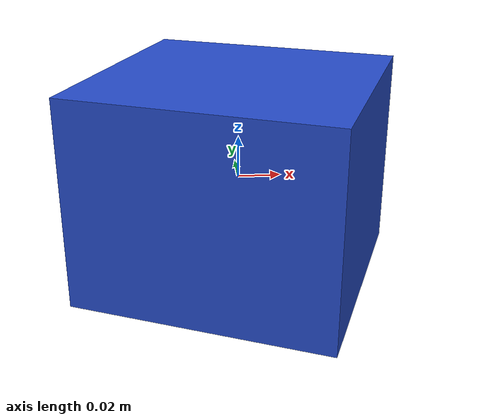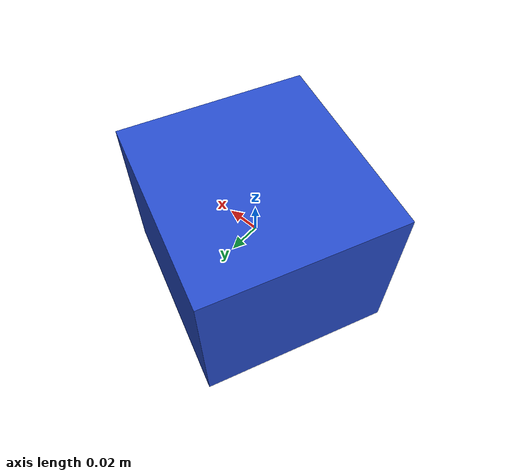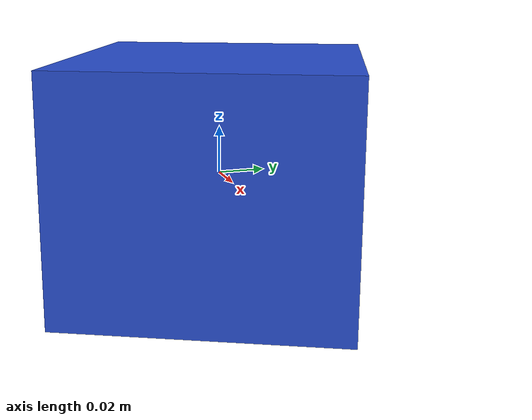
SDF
<sdf version="1.6"><model name="model_11"><static>true</static><link name="link"><pose>0 0 0 0 0 1.1574125915395612</pose><collision name="collision"><geometry><box><size>0.11809510172560474 0.12469126931648135 0.1</size></box></geometry></collision><visual name="visual"><geometry><box><size>0.11809510172560474 0.12469126931648135 0.1</size></box></geometry><material><script><name>Gazebo/Blue</name><uri>file://media/materials/scripts/gazebo.material</uri></script></material></visual></link></model></sdf>
